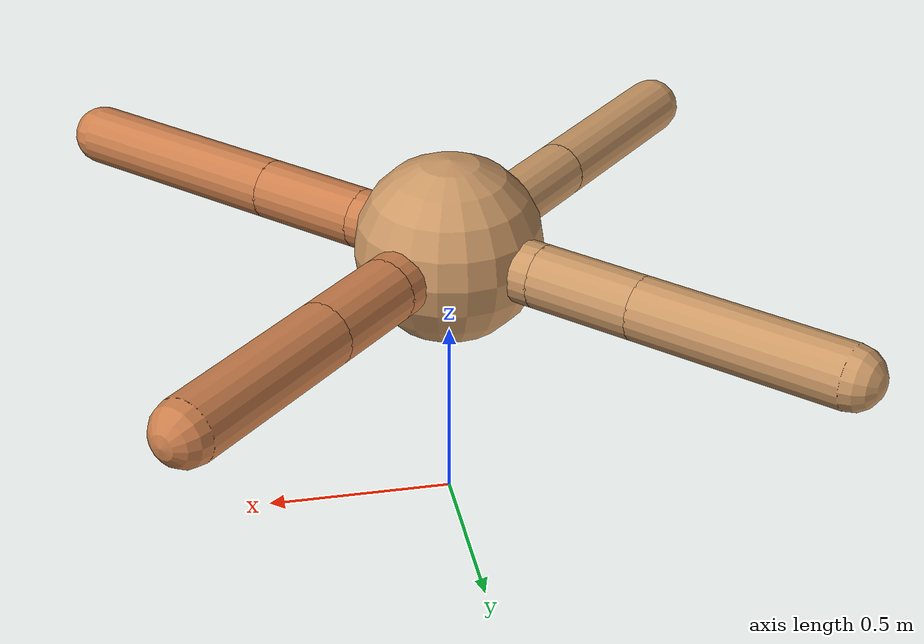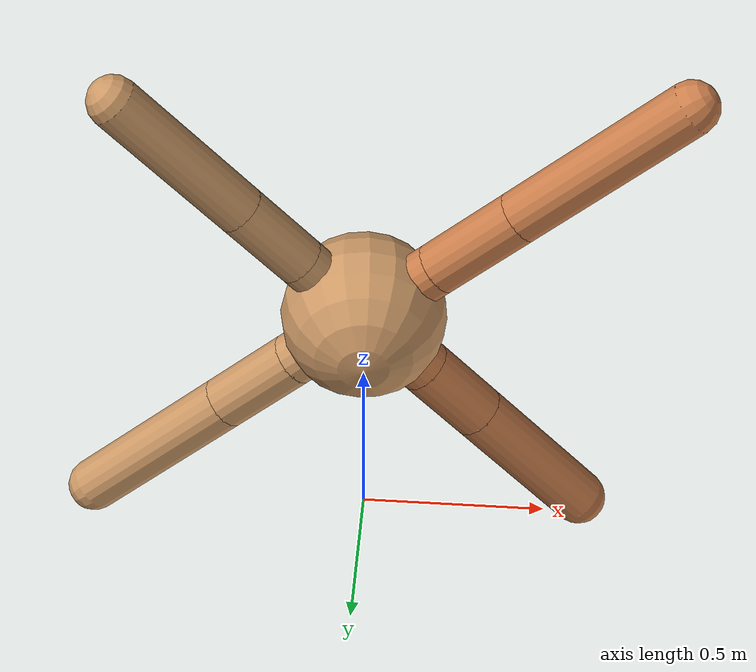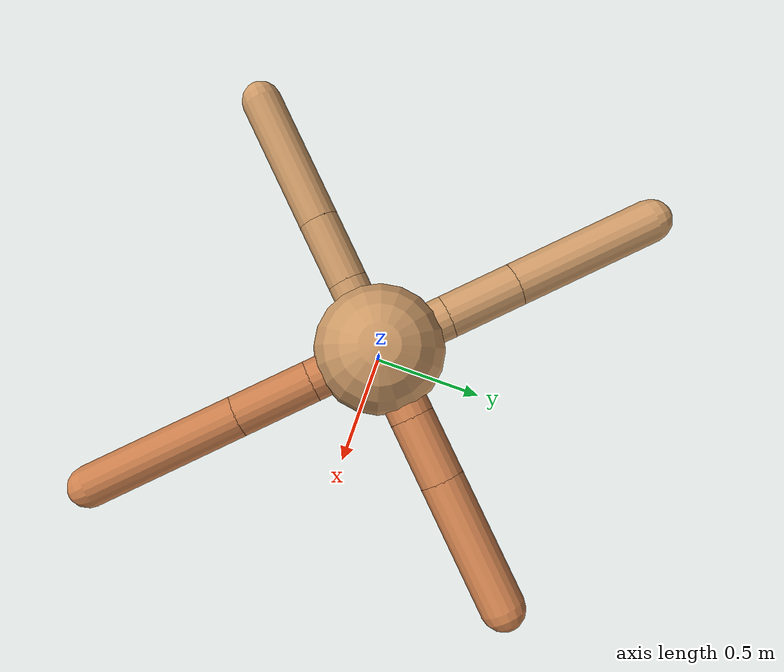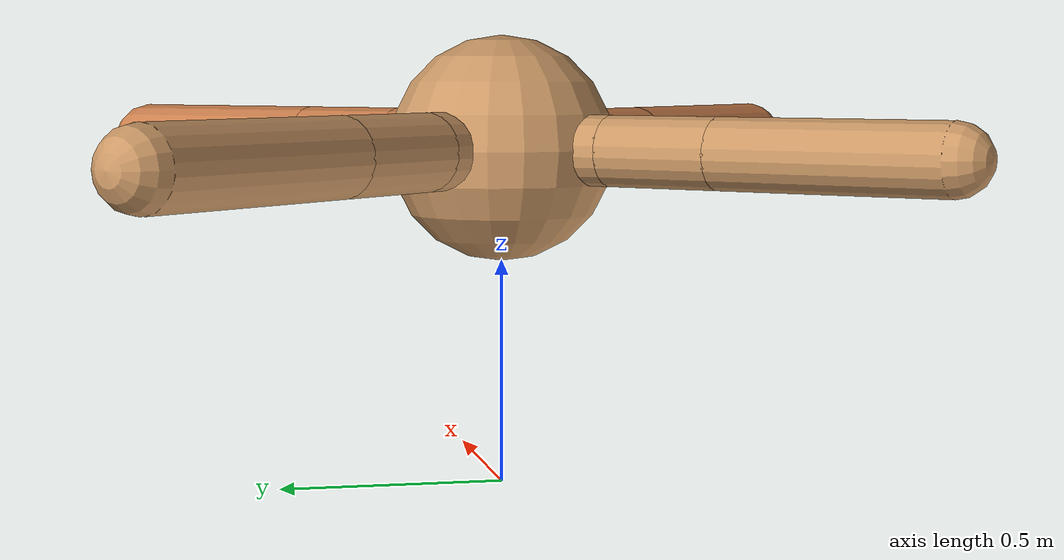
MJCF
<?xml version="1.0" ?>
<mujoco model="ant">

	<compiler angle="degree" coordinate="local" inertiafromgeom="true"/>

	<option integrator="RK4" timestep="0.01"/>

	<custom>

		<numeric data="0.0 0.0 0.55 1.0 0.0 0.0 0.0 0.0 1.0 0.0 -1.0 0.0 -1.0 0.0 1.0" name="init_qpos"/>

	</custom>

	<default>

		<joint armature="1" damping="1" limited="true"/>

		<geom conaffinity="0" condim="3" density="5.0" friction="1.5 0.1 0.1" margin="0.01" rgba="0.8 0.6 0.4 1"/>

	</default>

	<worldbody>

		<body name="torso" pos="0 0 0.75">

			<geom name="torso_geom" pos="0 0 0" size="0.2502714415423349" type="sphere"/>

			<!--joint armature="0" damping="0" limited="false" margin="0.01" name="root" pos="0 0 0" type="free"/-->

			<body name="front_left_leg" pos="0 0 0">

				<geom fromto="0 0 0 0.2 0.2 0" name="aux_1_geom" size="0.08668574013241756" type="capsule" rgba=".8 .5 .3 1"/>

				<body name="aux_1" pos="0.2 0.2 0">

					<joint axis="0 0 1" name="hip_1" pos="0.0 0.0 0.0" range="-40 40" type="hinge"/>

					<geom fromto="0 0 0 0.18324029339315284 0.18324029339315284 0" name="left_leg_geom" size="0.08668574013241756" type="capsule" rgba=".8 .5 .3 1"/>

					<body pos="0.18324029339315284 0.18324029339315284 0" name="front_left_foot">

						<joint axis="-1 1 0" name="ankle_1" pos="0.0 0.0 0.0" range="30 100" type="hinge"/>

						<geom fromto="0 0 0 0.3664805867863057 0.3664805867863057 0" name="left_ankle_geom" size="0.08668574013241756" type="capsule" rgba=".8 .5 .3 1"/>

					</body>

				</body>

			</body>

			<body name="front_right_leg" pos="0 0 0">

				<geom fromto="0 0 0 -0.2 0.2 0" name="aux_2_geom" size="0.08413800495559637" type="capsule"/>

				<body name="aux_2" pos="-0.2 0.2 0">

					<joint axis="0 0 1" name="hip_2" pos="0.0 0.0 0.0" range="-40 40" type="hinge"/>

					<geom fromto="0 0 0 -0.20234206788174977 0.20234206788174977 0" name="right_leg_geom" size="0.08413800495559637" type="capsule"/>

					<body pos="-0.20234206788174977 0.20234206788174977 0" name="front_right_foot">

						<joint axis="1 1 0" name="ankle_2" pos="0.0 0.0 0.0" range="-100 -30" type="hinge"/>

						<geom fromto="0 0 0 -0.40468413576349954 0.40468413576349954 0" name="right_ankle_geom" size="0.08413800495559637" type="capsule"/>

					</body>

				</body>

			</body>

			<body name="left_back_leg" pos="0 0 0">

				<geom fromto="0 0 0 -0.2 -0.2 0" name="aux_3_geom" size="0.07730024531071529" type="capsule"/>

				<body name="aux_3" pos="-0.2 -0.2 0">

					<joint axis="0 0 1" name="hip_3" pos="0.0 0.0 0.0" range="-40 40" type="hinge"/>

					<geom fromto="0 0 0 -0.18268674437865207 -0.18268674437865207 0" name="back_leg_geom" size="0.07730024531071529" type="capsule"/>

					<body pos="-0.18268674437865207 -0.18268674437865207 0" name="left_back_foot">

						<joint axis="-1 1 0" name="ankle_3" pos="0.0 0.0 0.0" range="-100 -30" type="hinge"/>

						<geom fromto="0 0 0 -0.36537348875730413 -0.36537348875730413 0" name="third_ankle_geom" size="0.07730024531071529" type="capsule"/>

					</body>

				</body>

			</body>

			<body name="right_back_leg" pos="0 0 0">

				<geom fromto="0 0 0 0.2 -0.2 0" name="aux_4_geom" size="0.08096579233959782" type="capsule" rgba=".8 .5 .3 1"/>

				<body name="aux_4" pos="0.2 -0.2 0">

					<joint axis="0 0 1" name="hip_4" pos="0.0 0.0 0.0" range="-40 40" type="hinge"/>

					<geom fromto="0 0 0 0.21546158294625722 -0.21546158294625722 0" name="rightback_leg_geom" size="0.08096579233959782" type="capsule" rgba=".8 .5 .3 1"/>

					<body pos="0.21546158294625722 -0.21546158294625722 0" name="right_back_foot">

						<joint axis="1 1 0" name="ankle_4" pos="0.0 0.0 0.0" range="30 100" type="hinge"/>

						<geom fromto="0 0 0 0.43092316589251445 -0.43092316589251445 0" name="fourth_ankle_geom" size="0.08096579233959782" type="capsule" rgba=".8 .5 .3 1"/>

					</body>

				</body>

			</body>

		</body>

	</worldbody>

	<actuator>

		<motor ctrllimited="true" ctrlrange="-1.0 1.0" joint="hip_4" gear="150"/>

		<motor ctrllimited="true" ctrlrange="-1.0 1.0" joint="ankle_4" gear="150"/>

		<motor ctrllimited="true" ctrlrange="-1.0 1.0" joint="hip_1" gear="150"/>

		<motor ctrllimited="true" ctrlrange="-1.0 1.0" joint="ankle_1" gear="150"/>

		<motor ctrllimited="true" ctrlrange="-1.0 1.0" joint="hip_2" gear="150"/>

		<motor ctrllimited="true" ctrlrange="-1.0 1.0" joint="ankle_2" gear="150"/>

		<motor ctrllimited="true" ctrlrange="-1.0 1.0" joint="hip_3" gear="150"/>

		<motor ctrllimited="true" ctrlrange="-1.0 1.0" joint="ankle_3" gear="150"/>

	</actuator>

</mujoco>
